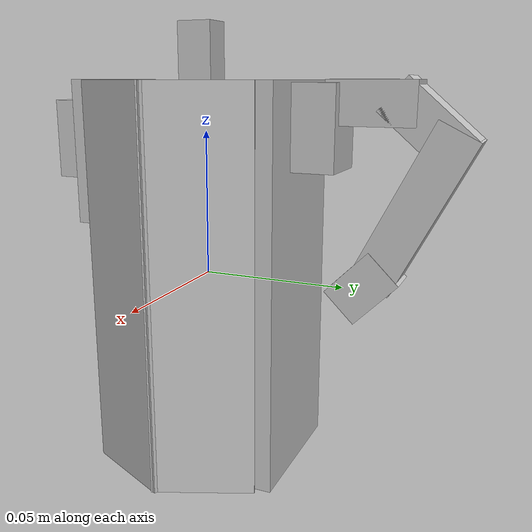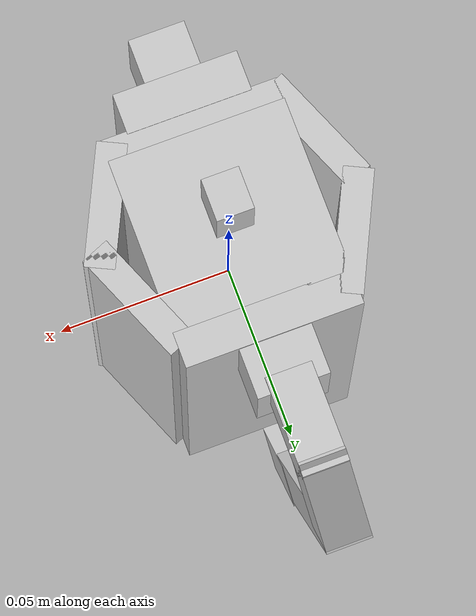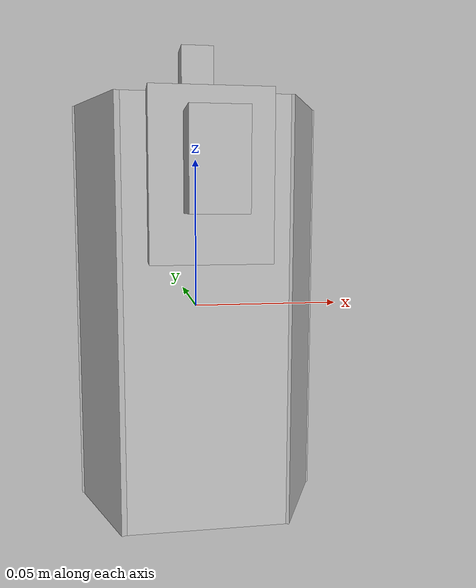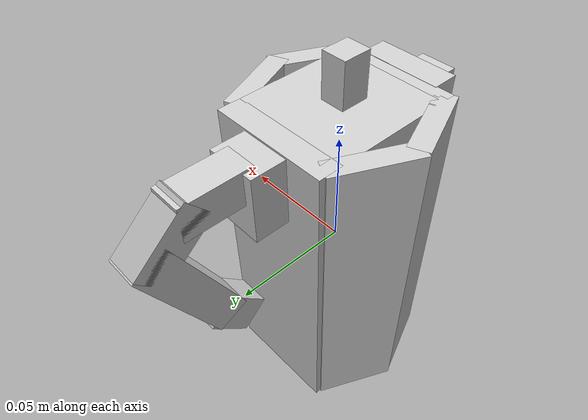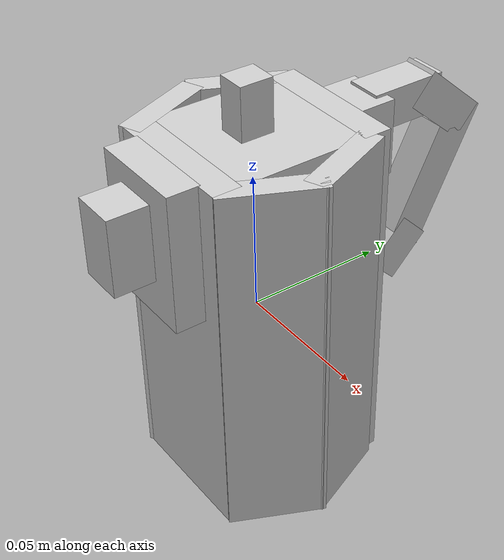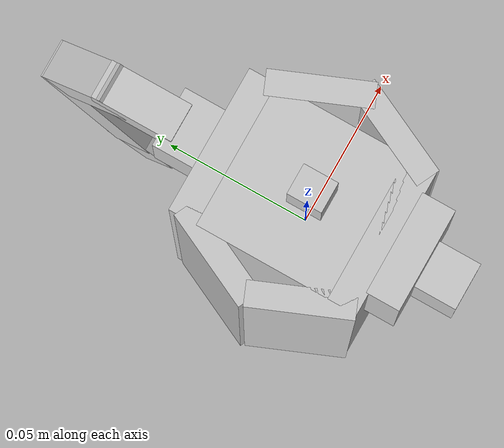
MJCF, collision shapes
<mujoco model="moka_pot_body">
  <asset>
  <texture file="metal_diff.png" name="tex-moka_pot_body" type="2d" />
  <material name="moka_pot_body" reflectance="0.5" texrepeat="1 1" texture="tex-moka_pot_body" texuniform="false" />
  <mesh file="visual/moka_pot_body_vis.msh" name="moka_pot_body_vis" scale="0.025 0.025 0.025" />
  <texture file="rubber_black.png" name="tex-moka_pot_handle" type="2d"/>
  <material name="moka_pot_handle" reflectance="0.5" texrepeat="1 1" texture="tex-moka_pot_handle" texuniform="false"/>
  <mesh file="visual/moka_pot_handle_vis.msh" name="moka_pot_handle_vis" scale="0.025 0.025 0.025"/>
</asset>
  <worldbody>
    <body>
      <body name="object">
      <geom solimp="0.998 0.998 0.001" solref="0.001 1" density="100" friction="0.95 0.3 0.1" type="mesh" mesh="moka_pot_body_vis" conaffinity="0" contype="0" group="1" material="moka_pot_body" />
      <geom solimp="0.998 0.998 0.001" solref="0.001 1" density="100" friction="0.95 0.3 0.1" type="mesh" mesh="moka_pot_handle_vis" conaffinity="0" contype="0" group="1" material="moka_pot_handle"/>

		  <site type="box" pos="0 0.03 0.04" quat="1 0 0 0" size="0.01 0.03 0.03" group="0" rgba="0.8 0.8 0. 0" name="handle_region"/>

      <geom solimp="0.998 0.998 0.001" solref="0.001 1" density="100" friction="0.95 0.3 0.1" type="box" pos="-0.00000 -0.00000 0.00044" quat="0.00000 0.00000 0.00000 1.00000" size="0.02500 0.02500 0.06655" group="0" rgba="0.8 0.8 0.8 0.3" /><geom solimp="0.998 0.998 0.001" solref="0.001 1" density="100" friction="0.95 0.3 0.1" type="box" pos="0.00000 -0.02594 0.00044" quat="0.00000 0.70711 0.70711 0.00000" size="0.00505 0.02500 0.06655" group="0" rgba="0.8 0.8 0.8 0.3" /><geom solimp="0.998 0.998 0.001" solref="0.001 1" density="100" friction="0.95 0.3 0.1" type="box" pos="0.00000 0.02955 0.00044" quat="0.00000 0.70711 0.70711 0.00000" size="0.00505 0.02500 0.06655" group="0" rgba="0.8 0.8 0.8 0.3" /><geom solimp="0.998 0.998 0.001" solref="0.001 1" density="100" friction="0.95 0.3 0.1" type="box" pos="0.03017 0.01254 0.00044" quat="0.00000 -0.19372 0.98106 0.00000" size="0.00420 0.01719 0.06655" group="0" rgba="0.8 0.8 0.8 0.3" /><geom solimp="0.998 0.998 0.001" solref="0.001 1" density="100" friction="0.95 0.3 0.1" type="box" pos="-0.02934 -0.01403 0.00044" quat="-0.00000 -0.98106 -0.19372 -0.00000" size="0.00420 0.01719 0.06655" group="0" rgba="0.8 0.8 0.8 0.3" /><geom solimp="0.998 0.998 0.001" solref="0.001 1" density="100" friction="0.95 0.3 0.1" type="box" pos="0.02962 -0.01403 0.00044" quat="0.00000 -0.97505 0.22201 0.00000" size="0.00420 0.01719 0.06655" group="0" rgba="0.8 0.8 0.8 0.3" /><geom solimp="0.998 0.998 0.001" solref="0.001 1" density="100" friction="0.95 0.3 0.1" type="box" pos="-0.02934 0.01509 0.00044" quat="0.00000 -0.97505 0.22201 0.00000" size="0.00420 0.01719 0.06655" group="0" rgba="0.8 0.8 0.8 0.3" /><geom solimp="0.998 0.998 0.001" solref="0.001 1" density="100" friction="0.95 0.3 0.1" type="box" pos="0.00000 -0.03591 0.04260" quat="0.00000 0.70711 0.70711 0.00000" size="0.00577 0.01762 0.02451" group="0" rgba="0.8 0.8 0.8 0.3" /><geom solimp="0.998 0.998 0.001" solref="0.001 1" density="100" friction="0.95 0.3 0.1" type="box" pos="0.00000 -0.04910 0.04619" quat="0.00000 0.70711 0.70711 0.00000" size="0.00721 0.00802 0.01374" group="0" rgba="0.8 0.8 0.8 0.3" /><geom solimp="0.998 0.998 0.001" solref="0.001 1" density="100" friction="0.95 0.3 0.1" type="box" pos="-0.00000 0.04159 0.05249" quat="0.00000 0.70711 0.70711 0.00000" size="0.00721 0.01021 0.01374" group="0" rgba="0.8 0.8 0.8 0.3" /><geom solimp="0.998 0.998 0.001" solref="0.001 1" density="100" friction="0.95 0.3 0.1" type="box" pos="0.00000 0.05829 0.06027" quat="0.00000 -0.00000 0.70711 -0.70711" size="0.00655 0.00697 0.01409" group="0" rgba="0.8 0.8 0.8 0.3" /><geom solimp="0.998 0.998 0.001" solref="0.001 1" density="100" friction="0.95 0.3 0.1" type="box" pos="-0.00000 0.07546 0.05391" quat="0.00000 0.00000 -0.90919 -0.41638" size="0.00655 0.00697 0.01409" group="0" rgba="0.8 0.8 0.8 0.3" /><geom solimp="0.998 0.998 0.001" solref="0.001 1" density="100" friction="0.95 0.3 0.1" type="box" pos="-0.00000 0.07247 0.02824" quat="0.00000 -0.00000 -0.23224 -0.97266" size="0.00655 0.00710 0.02750" group="0" rgba="0.8 0.8 0.8 0.3" /><geom solimp="0.998 0.998 0.001" solref="0.001 1" density="100" friction="0.95 0.3 0.1" type="box" pos="0.00013 0.05763 0.00230" quat="0.00000 -0.00000 0.92514 -0.37963" size="0.00655 0.00707 0.01007" group="0" rgba="0.8 0.8 0.8 0.3" /><geom solimp="0.998 0.998 0.001" solref="0.001 1" density="100" friction="0.95 0.3 0.1" type="box" pos="-0.00000 -0.00134 0.07429" quat="0.00000 0.00000 1.00000 0.00000" size="0.00524 0.00598 0.01140" group="0" rgba="0.8 0.8 0.8 0.3" /></body>
      <site rgba="0 0 0 0" size="0.005" pos="0 0 -0.06" name="bottom_site" />
      <site rgba="0 0 0 0" size="0.005" pos="0 0 0.04" name="top_site" />
      <site rgba="0 0 0 0" size="0.005" pos="0.025 0.025 0" name="horizontal_radius_site" />
    </body>
  </worldbody>
</mujoco>
